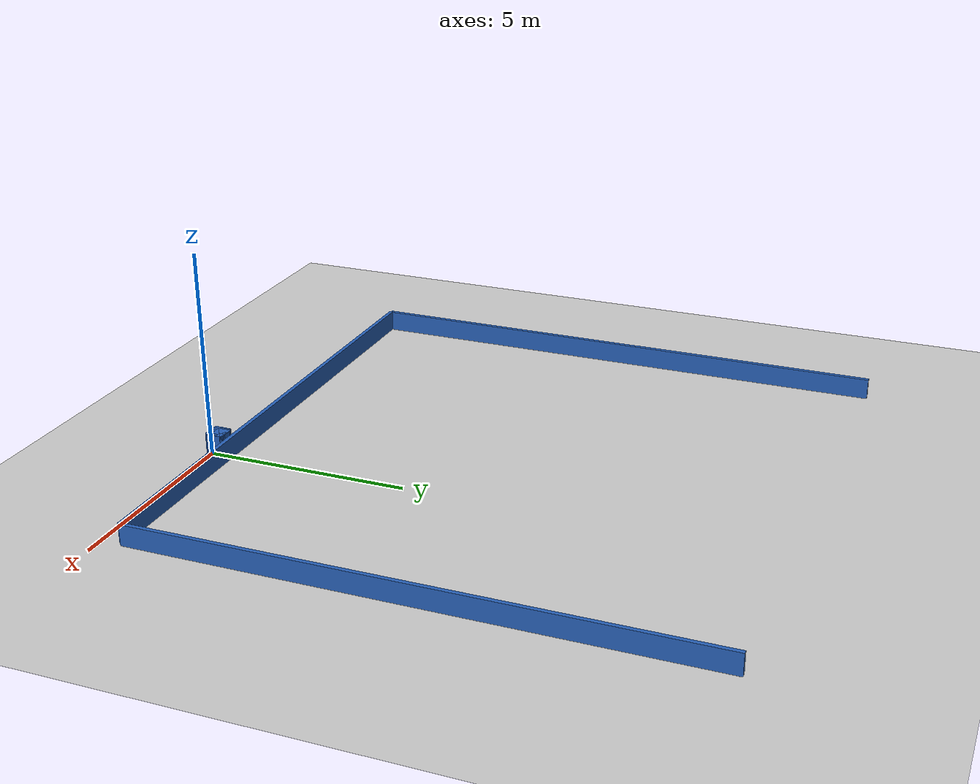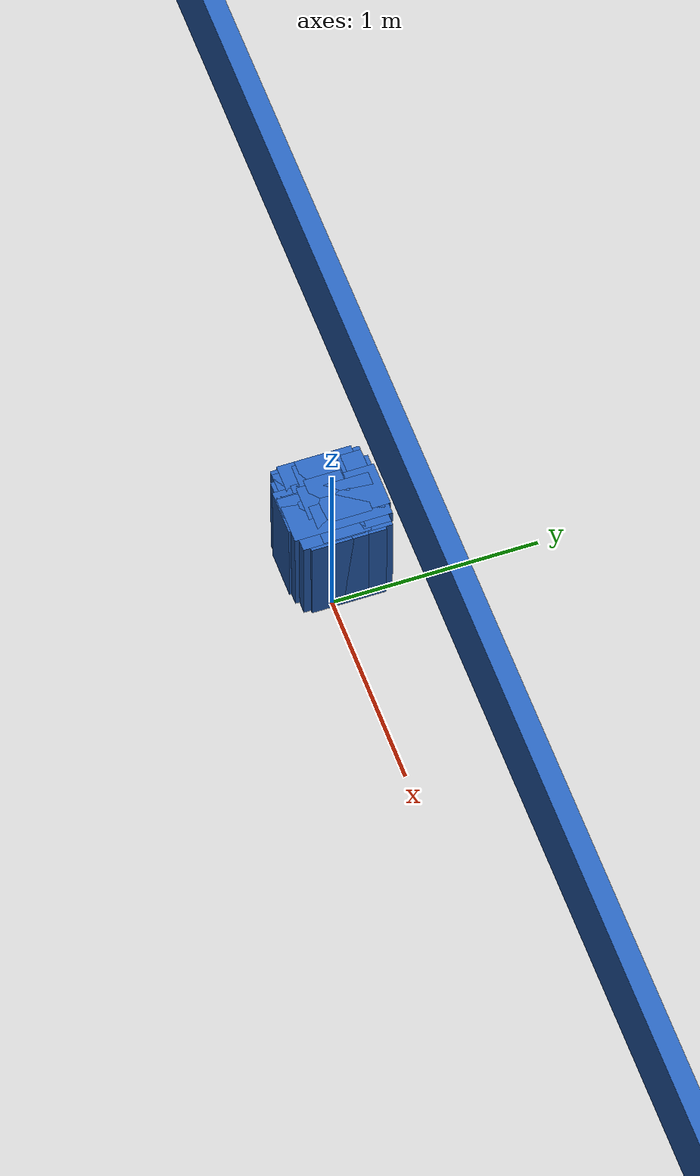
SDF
<?xml version="1.0" ?>
    <sdf version="1.5">
      <world name="default">
        <!-- A global light source -->
        <include>
          <uri>model://sun</uri>
        </include>
        <!-- A ground plane -->
        <include>
          <uri>model://ground_plane</uri>
        </include>

    <model name='libopen_space_final_T2B_73_9'>
      <static>1</static>
      <pose frame=''>-0.225000 0.075000 0.000000 0.000000 0.000000 0.000000</pose>
      <link name='link'>
        <inertial>
          <mass>1</mass>
          <inertia>
            <ixx>0.145833</ixx>
            <ixy>0</ixy>
            <ixz>0</ixz>
            <iyy>0.145833</iyy>
            <iyz>0</iyz>
            <izz>0.125</izz>
          </inertia>
        </inertial>
        <collision name='collision'>
          <geometry>
            <box>
              <size>0.42 0.43 1</size>
            </box>
          </geometry>
          <max_contacts>10</max_contacts>
          <surface>
            <contact>
              <ode/>
            </contact>
            <bounce/>
            <friction>
              <torsional>
                <ode/>
              </torsional>
              <ode/>
            </friction>
          </surface>
        </collision>
        <visual name='visual'>
          <geometry>
            <box>
              <size>0.42 0.43 1</size>
            </box>
          </geometry>
	    <material>
              <ambient>0.152000 0.379000 0.720000 1</ambient>
	      <diffuse>0.152000 0.379000 0.720000 1</diffuse>
          </material>
          <material>
            <script>
              <name>Gazebo/Grey</name>
              <uri>file://media/materials/scripts/gazebo.material</uri>
            </script>
          </material>
        </visual>
        <self_collide>0</self_collide>
        <kinematic>0</kinematic>
        <gravity>1</gravity>
      </link>
      <plugin name='libopen_space_final_T2B_73_9' filename='libopen_space_final_T2B_73_9.so'/>
    </model>

    <model name='libopen_space_final_T2B_112_28'>
      <static>1</static>
      <pose frame=''>-0.225000 0.075000 0.000000 0.000000 0.000000 0.000000</pose>
      <link name='link'>
        <inertial>
          <mass>1</mass>
          <inertia>
            <ixx>0.145833</ixx>
            <ixy>0</ixy>
            <ixz>0</ixz>
            <iyy>0.145833</iyy>
            <iyz>0</iyz>
            <izz>0.125</izz>
          </inertia>
        </inertial>
        <collision name='collision'>
          <geometry>
            <box>
              <size>0.23 0.49 1</size>
            </box>
          </geometry>
          <max_contacts>10</max_contacts>
          <surface>
            <contact>
              <ode/>
            </contact>
            <bounce/>
            <friction>
              <torsional>
                <ode/>
              </torsional>
              <ode/>
            </friction>
          </surface>
        </collision>
        <visual name='visual'>
          <geometry>
            <box>
              <size>0.23 0.49 1</size>
            </box>
          </geometry>
	    <material>
              <ambient>0.152000 0.379000 0.720000 1</ambient>
	      <diffuse>0.152000 0.379000 0.720000 1</diffuse>
          </material>
          <material>
            <script>
              <name>Gazebo/Grey</name>
              <uri>file://media/materials/scripts/gazebo.material</uri>
            </script>
          </material>
        </visual>
        <self_collide>0</self_collide>
        <kinematic>0</kinematic>
        <gravity>1</gravity>
      </link>
      <plugin name='libopen_space_final_T2B_112_28' filename='libopen_space_final_T2B_112_28.so'/>
    </model>

    <model name='libopen_space_final_T2B_92_34'>
      <static>1</static>
      <pose frame=''>-0.225000 0.075000 0.000000 0.000000 0.000000 0.000000</pose>
      <link name='link'>
        <inertial>
          <mass>1</mass>
          <inertia>
            <ixx>0.145833</ixx>
            <ixy>0</ixy>
            <ixz>0</ixz>
            <iyy>0.145833</iyy>
            <iyz>0</iyz>
            <izz>0.125</izz>
          </inertia>
        </inertial>
        <collision name='collision'>
          <geometry>
            <box>
              <size>0.27 0.18 1</size>
            </box>
          </geometry>
          <max_contacts>10</max_contacts>
          <surface>
            <contact>
              <ode/>
            </contact>
            <bounce/>
            <friction>
              <torsional>
                <ode/>
              </torsional>
              <ode/>
            </friction>
          </surface>
        </collision>
        <visual name='visual'>
          <geometry>
            <box>
              <size>0.27 0.18 1</size>
            </box>
          </geometry>
	    <material>
              <ambient>0.152000 0.379000 0.720000 1</ambient>
	      <diffuse>0.152000 0.379000 0.720000 1</diffuse>
          </material>
          <material>
            <script>
              <name>Gazebo/Grey</name>
              <uri>file://media/materials/scripts/gazebo.material</uri>
            </script>
          </material>
        </visual>
        <self_collide>0</self_collide>
        <kinematic>0</kinematic>
        <gravity>1</gravity>
      </link>
      <plugin name='libopen_space_final_T2B_92_34' filename='libopen_space_final_T2B_92_34.so'/>
    </model>

    <model name='libopen_space_final_T2B_134_32'>
      <static>1</static>
      <pose frame=''>-0.225000 0.075000 0.000000 0.000000 0.000000 0.000000</pose>
      <link name='link'>
        <inertial>
          <mass>1</mass>
          <inertia>
            <ixx>0.145833</ixx>
            <ixy>0</ixy>
            <ixz>0</ixz>
            <iyy>0.145833</iyy>
            <iyz>0</iyz>
            <izz>0.125</izz>
          </inertia>
        </inertial>
        <collision name='collision'>
          <geometry>
            <box>
              <size>0.45 0.23 1</size>
            </box>
          </geometry>
          <max_contacts>10</max_contacts>
          <surface>
            <contact>
              <ode/>
            </contact>
            <bounce/>
            <friction>
              <torsional>
                <ode/>
              </torsional>
              <ode/>
            </friction>
          </surface>
        </collision>
        <visual name='visual'>
          <geometry>
            <box>
              <size>0.45 0.23 1</size>
            </box>
          </geometry>
	    <material>
              <ambient>0.152000 0.379000 0.720000 1</ambient>
	      <diffuse>0.152000 0.379000 0.720000 1</diffuse>
          </material>
          <material>
            <script>
              <name>Gazebo/Grey</name>
              <uri>file://media/materials/scripts/gazebo.material</uri>
            </script>
          </material>
        </visual>
        <self_collide>0</self_collide>
        <kinematic>0</kinematic>
        <gravity>1</gravity>
      </link>
      <plugin name='libopen_space_final_T2B_134_32' filename='libopen_space_final_T2B_134_32.so'/>
    </model>

    <model name='libopen_space_final_T2B_79_14'>
      <static>1</static>
      <pose frame=''>-0.225000 0.075000 0.000000 0.000000 0.000000 0.000000</pose>
      <link name='link'>
        <inertial>
          <mass>1</mass>
          <inertia>
            <ixx>0.145833</ixx>
            <ixy>0</ixy>
            <ixz>0</ixz>
            <iyy>0.145833</iyy>
            <iyz>0</iyz>
            <izz>0.125</izz>
          </inertia>
        </inertial>
        <collision name='collision'>
          <geometry>
            <box>
              <size>0.34 0.47 1</size>
            </box>
          </geometry>
          <max_contacts>10</max_contacts>
          <surface>
            <contact>
              <ode/>
            </contact>
            <bounce/>
            <friction>
              <torsional>
                <ode/>
              </torsional>
              <ode/>
            </friction>
          </surface>
        </collision>
        <visual name='visual'>
          <geometry>
            <box>
              <size>0.34 0.47 1</size>
            </box>
          </geometry>
	    <material>
              <ambient>0.152000 0.379000 0.720000 1</ambient>
	      <diffuse>0.152000 0.379000 0.720000 1</diffuse>
          </material>
          <material>
            <script>
              <name>Gazebo/Grey</name>
              <uri>file://media/materials/scripts/gazebo.material</uri>
            </script>
          </material>
        </visual>
        <self_collide>0</self_collide>
        <kinematic>0</kinematic>
        <gravity>1</gravity>
      </link>
      <plugin name='libopen_space_final_T2B_79_14' filename='libopen_space_final_T2B_79_14.so'/>
    </model>

    <model name='libopen_space_final_T2B_134_25'>
      <static>1</static>
      <pose frame=''>-0.225000 0.075000 0.000000 0.000000 0.000000 0.000000</pose>
      <link name='link'>
        <inertial>
          <mass>1</mass>
          <inertia>
            <ixx>0.145833</ixx>
            <ixy>0</ixy>
            <ixz>0</ixz>
            <iyy>0.145833</iyy>
            <iyz>0</iyz>
            <izz>0.125</izz>
          </inertia>
        </inertial>
        <collision name='collision'>
          <geometry>
            <box>
              <size>0.16 0.41 1</size>
            </box>
          </geometry>
          <max_contacts>10</max_contacts>
          <surface>
            <contact>
              <ode/>
            </contact>
            <bounce/>
            <friction>
              <torsional>
                <ode/>
              </torsional>
              <ode/>
            </friction>
          </surface>
        </collision>
        <visual name='visual'>
          <geometry>
            <box>
              <size>0.16 0.41 1</size>
            </box>
          </geometry>
	    <material>
              <ambient>0.152000 0.379000 0.720000 1</ambient>
	      <diffuse>0.152000 0.379000 0.720000 1</diffuse>
          </material>
          <material>
            <script>
              <name>Gazebo/Grey</name>
              <uri>file://media/materials/scripts/gazebo.material</uri>
            </script>
          </material>
        </visual>
        <self_collide>0</self_collide>
        <kinematic>0</kinematic>
        <gravity>1</gravity>
      </link>
      <plugin name='libopen_space_final_T2B_134_25' filename='libopen_space_final_T2B_134_25.so'/>
    </model>

    <model name='libopen_space_final_T2B_125_59'>
      <static>1</static>
      <pose frame=''>-0.225000 0.075000 0.000000 0.000000 0.000000 0.000000</pose>
      <link name='link'>
        <inertial>
          <mass>1</mass>
          <inertia>
            <ixx>0.145833</ixx>
            <ixy>0</ixy>
            <ixz>0</ixz>
            <iyy>0.145833</iyy>
            <iyz>0</iyz>
            <izz>0.125</izz>
          </inertia>
        </inertial>
        <collision name='collision'>
          <geometry>
            <box>
              <size>0.25 0.15 1</size>
            </box>
          </geometry>
          <max_contacts>10</max_contacts>
          <surface>
            <contact>
              <ode/>
            </contact>
            <bounce/>
            <friction>
              <torsional>
                <ode/>
              </torsional>
              <ode/>
            </friction>
          </surface>
        </collision>
        <visual name='visual'>
          <geometry>
            <box>
              <size>0.25 0.15 1</size>
            </box>
          </geometry>
	    <material>
              <ambient>0.152000 0.379000 0.720000 1</ambient>
	      <diffuse>0.152000 0.379000 0.720000 1</diffuse>
          </material>
          <material>
            <script>
              <name>Gazebo/Grey</name>
              <uri>file://media/materials/scripts/gazebo.material</uri>
            </script>
          </material>
        </visual>
        <self_collide>0</self_collide>
        <kinematic>0</kinematic>
        <gravity>1</gravity>
      </link>
      <plugin name='libopen_space_final_T2B_125_59' filename='libopen_space_final_T2B_125_59.so'/>
    </model>

    <model name='libopen_space_final_T2B_118_50'>
      <static>1</static>
      <pose frame=''>-0.225000 0.075000 0.000000 0.000000 0.000000 0.000000</pose>
      <link name='link'>
        <inertial>
          <mass>1</mass>
          <inertia>
            <ixx>0.145833</ixx>
            <ixy>0</ixy>
            <ixz>0</ixz>
            <iyy>0.145833</iyy>
            <iyz>0</iyz>
            <izz>0.125</izz>
          </inertia>
        </inertial>
        <collision name='collision'>
          <geometry>
            <box>
              <size>0.46 0.43 1</size>
            </box>
          </geometry>
          <max_contacts>10</max_contacts>
          <surface>
            <contact>
              <ode/>
            </contact>
            <bounce/>
            <friction>
              <torsional>
                <ode/>
              </torsional>
              <ode/>
            </friction>
          </surface>
        </collision>
        <visual name='visual'>
          <geometry>
            <box>
              <size>0.46 0.43 1</size>
            </box>
          </geometry>
	    <material>
              <ambient>0.152000 0.379000 0.720000 1</ambient>
	      <diffuse>0.152000 0.379000 0.720000 1</diffuse>
          </material>
          <material>
            <script>
              <name>Gazebo/Grey</name>
              <uri>file://media/materials/scripts/gazebo.material</uri>
            </script>
          </material>
        </visual>
        <self_collide>0</self_collide>
        <kinematic>0</kinematic>
        <gravity>1</gravity>
      </link>
      <plugin name='libopen_space_final_T2B_118_50' filename='libopen_space_final_T2B_118_50.so'/>
    </model>

    <model name='libopen_space_final_T2B_100_36'>
      <static>1</static>
      <pose frame=''>-0.225000 0.075000 0.000000 0.000000 0.000000 0.000000</pose>
      <link name='link'>
        <inertial>
          <mass>1</mass>
          <inertia>
            <ixx>0.145833</ixx>
            <ixy>0</ixy>
            <ixz>0</ixz>
            <iyy>0.145833</iyy>
            <iyz>0</iyz>
            <izz>0.125</izz>
          </inertia>
        </inertial>
        <collision name='collision'>
          <geometry>
            <box>
              <size>0.49 0.19 1</size>
            </box>
          </geometry>
          <max_contacts>10</max_contacts>
          <surface>
            <contact>
              <ode/>
            </contact>
            <bounce/>
            <friction>
              <torsional>
                <ode/>
              </torsional>
              <ode/>
            </friction>
          </surface>
        </collision>
        <visual name='visual'>
          <geometry>
            <box>
              <size>0.49 0.19 1</size>
            </box>
          </geometry>
	    <material>
              <ambient>0.152000 0.379000 0.720000 1</ambient>
	      <diffuse>0.152000 0.379000 0.720000 1</diffuse>
          </material>
          <material>
            <script>
              <name>Gazebo/Grey</name>
              <uri>file://media/materials/scripts/gazebo.material</uri>
            </script>
          </material>
        </visual>
        <self_collide>0</self_collide>
        <kinematic>0</kinematic>
        <gravity>1</gravity>
      </link>
      <plugin name='libopen_space_final_T2B_100_36' filename='libopen_space_final_T2B_100_36.so'/>
    </model>

    <model name='libopen_space_final_T2B_122_30'>
      <static>1</static>
      <pose frame=''>-0.225000 0.075000 0.000000 0.000000 0.000000 0.000000</pose>
      <link name='link'>
        <inertial>
          <mass>1</mass>
          <inertia>
            <ixx>0.145833</ixx>
            <ixy>0</ixy>
            <ixz>0</ixz>
            <iyy>0.145833</iyy>
            <iyz>0</iyz>
            <izz>0.125</izz>
          </inertia>
        </inertial>
        <collision name='collision'>
          <geometry>
            <box>
              <size>0.15 0.48 1</size>
            </box>
          </geometry>
          <max_contacts>10</max_contacts>
          <surface>
            <contact>
              <ode/>
            </contact>
            <bounce/>
            <friction>
              <torsional>
                <ode/>
              </torsional>
              <ode/>
            </friction>
          </surface>
        </collision>
        <visual name='visual'>
          <geometry>
            <box>
              <size>0.15 0.48 1</size>
            </box>
          </geometry>
	    <material>
              <ambient>0.152000 0.379000 0.720000 1</ambient>
	      <diffuse>0.152000 0.379000 0.720000 1</diffuse>
          </material>
          <material>
            <script>
              <name>Gazebo/Grey</name>
              <uri>file://media/materials/scripts/gazebo.material</uri>
            </script>
          </material>
        </visual>
        <self_collide>0</self_collide>
        <kinematic>0</kinematic>
        <gravity>1</gravity>
      </link>
      <plugin name='libopen_space_final_T2B_122_30' filename='libopen_space_final_T2B_122_30.so'/>
    </model>

    <model name='libopen_space_final_T2B_112_54'>
      <static>1</static>
      <pose frame=''>-0.225000 0.075000 0.000000 0.000000 0.000000 0.000000</pose>
      <link name='link'>
        <inertial>
          <mass>1</mass>
          <inertia>
            <ixx>0.145833</ixx>
            <ixy>0</ixy>
            <ixz>0</ixz>
            <iyy>0.145833</iyy>
            <iyz>0</iyz>
            <izz>0.125</izz>
          </inertia>
        </inertial>
        <collision name='collision'>
          <geometry>
            <box>
              <size>0.49 0.36 1</size>
            </box>
          </geometry>
          <max_contacts>10</max_contacts>
          <surface>
            <contact>
              <ode/>
            </contact>
            <bounce/>
            <friction>
              <torsional>
                <ode/>
              </torsional>
              <ode/>
            </friction>
          </surface>
        </collision>
        <visual name='visual'>
          <geometry>
            <box>
              <size>0.49 0.36 1</size>
            </box>
          </geometry>
	    <material>
              <ambient>0.152000 0.379000 0.720000 1</ambient>
	      <diffuse>0.152000 0.379000 0.720000 1</diffuse>
          </material>
          <material>
            <script>
              <name>Gazebo/Grey</name>
              <uri>file://media/materials/scripts/gazebo.material</uri>
            </script>
          </material>
        </visual>
        <self_collide>0</self_collide>
        <kinematic>0</kinematic>
        <gravity>1</gravity>
      </link>
      <plugin name='libopen_space_final_T2B_112_54' filename='libopen_space_final_T2B_112_54.so'/>
    </model>

    <model name='libopen_space_final_T2B_115_24'>
      <static>1</static>
      <pose frame=''>-0.225000 0.075000 0.000000 0.000000 0.000000 0.000000</pose>
      <link name='link'>
        <inertial>
          <mass>1</mass>
          <inertia>
            <ixx>0.145833</ixx>
            <ixy>0</ixy>
            <ixz>0</ixz>
            <iyy>0.145833</iyy>
            <iyz>0</iyz>
            <izz>0.125</izz>
          </inertia>
        </inertial>
        <collision name='collision'>
          <geometry>
            <box>
              <size>0.25 0.31 1</size>
            </box>
          </geometry>
          <max_contacts>10</max_contacts>
          <surface>
            <contact>
              <ode/>
            </contact>
            <bounce/>
            <friction>
              <torsional>
                <ode/>
              </torsional>
              <ode/>
            </friction>
          </surface>
        </collision>
        <visual name='visual'>
          <geometry>
            <box>
              <size>0.25 0.31 1</size>
            </box>
          </geometry>
	    <material>
              <ambient>0.152000 0.379000 0.720000 1</ambient>
	      <diffuse>0.152000 0.379000 0.720000 1</diffuse>
          </material>
          <material>
            <script>
              <name>Gazebo/Grey</name>
              <uri>file://media/materials/scripts/gazebo.material</uri>
            </script>
          </material>
        </visual>
        <self_collide>0</self_collide>
        <kinematic>0</kinematic>
        <gravity>1</gravity>
      </link>
      <plugin name='libopen_space_final_T2B_115_24' filename='libopen_space_final_T2B_115_24.so'/>
    </model>

    <model name='libopen_space_final_T2B_116_74'>
      <static>1</static>
      <pose frame=''>-0.225000 0.075000 0.000000 0.000000 0.000000 0.000000</pose>
      <link name='link'>
        <inertial>
          <mass>1</mass>
          <inertia>
            <ixx>0.145833</ixx>
            <ixy>0</ixy>
            <ixz>0</ixz>
            <iyy>0.145833</iyy>
            <iyz>0</iyz>
            <izz>0.125</izz>
          </inertia>
        </inertial>
        <collision name='collision'>
          <geometry>
            <box>
              <size>0.18 0.12 1</size>
            </box>
          </geometry>
          <max_contacts>10</max_contacts>
          <surface>
            <contact>
              <ode/>
            </contact>
            <bounce/>
            <friction>
              <torsional>
                <ode/>
              </torsional>
              <ode/>
            </friction>
          </surface>
        </collision>
        <visual name='visual'>
          <geometry>
            <box>
              <size>0.18 0.12 1</size>
            </box>
          </geometry>
	    <material>
              <ambient>0.152000 0.379000 0.720000 1</ambient>
	      <diffuse>0.152000 0.379000 0.720000 1</diffuse>
          </material>
          <material>
            <script>
              <name>Gazebo/Grey</name>
              <uri>file://media/materials/scripts/gazebo.material</uri>
            </script>
          </material>
        </visual>
        <self_collide>0</self_collide>
        <kinematic>0</kinematic>
        <gravity>1</gravity>
      </link>
      <plugin name='libopen_space_final_T2B_116_74' filename='libopen_space_final_T2B_116_74.so'/>
    </model>

    <model name='libopen_space_final_T2B_118_43'>
      <static>1</static>
      <pose frame=''>-0.225000 0.075000 0.000000 0.000000 0.000000 0.000000</pose>
      <link name='link'>
        <inertial>
          <mass>1</mass>
          <inertia>
            <ixx>0.145833</ixx>
            <ixy>0</ixy>
            <ixz>0</ixz>
            <iyy>0.145833</iyy>
            <iyz>0</iyz>
            <izz>0.125</izz>
          </inertia>
        </inertial>
        <collision name='collision'>
          <geometry>
            <box>
              <size>0.21 0.27 1</size>
            </box>
          </geometry>
          <max_contacts>10</max_contacts>
          <surface>
            <contact>
              <ode/>
            </contact>
            <bounce/>
            <friction>
              <torsional>
                <ode/>
              </torsional>
              <ode/>
            </friction>
          </surface>
        </collision>
        <visual name='visual'>
          <geometry>
            <box>
              <size>0.21 0.27 1</size>
            </box>
          </geometry>
	    <material>
              <ambient>0.152000 0.379000 0.720000 1</ambient>
	      <diffuse>0.152000 0.379000 0.720000 1</diffuse>
          </material>
          <material>
            <script>
              <name>Gazebo/Grey</name>
              <uri>file://media/materials/scripts/gazebo.material</uri>
            </script>
          </material>
        </visual>
        <self_collide>0</self_collide>
        <kinematic>0</kinematic>
        <gravity>1</gravity>
      </link>
      <plugin name='libopen_space_final_T2B_118_43' filename='libopen_space_final_T2B_118_43.so'/>
    </model>

        <model name='bottom_wall'>
          <static>1</static>
          <pose frame=''>-2.25 0.5 0.000000 0.000000 0.000000 1.57079632</pose>
          <link name='link'>
            <inertial>
            <mass>1</mass>
            <inertia>
              <ixx>0.145833</ixx>
              <ixy>0</ixy>
              <ixz>0</ixz>
              <iyy>0.145833</iyy>
              <iyz>0</iyz>
              <izz>0.125</izz>
            </inertia>
            </inertial>
            <collision name='collision'>
            <geometry>
              <box>
              <size>0.1 13.5 1</size>
              </box>
            </geometry>
            <max_contacts>10</max_contacts>
            <surface>
              <contact>
              <ode/>
              </contact>
              <bounce/>
              <friction>
              <torsional>
                <ode/>
              </torsional>
              <ode/>
              </friction>
            </surface>
            </collision>
            <visual name='visual'>
            <geometry>
              <box>
              <size>0.1 13.5 1</size>
              </box>
            </geometry>
            <material>
              <ambient>0.152000 0.379000 0.720000 1</ambient>
            <diffuse>0.152000 0.379000 0.720000 1</diffuse>
            </material>
            <material>
              <script>
              <name>Gazebo/Grey</name>
              <uri>file://media/materials/scripts/gazebo.material</uri>
              </script>
            </material>
            </visual>
            <self_collide>0</self_collide>
            <kinematic>0</kinematic>
            <gravity>1</gravity>
          </link>
        </model>

        <model name='left_wall'>
          <static>1</static>
          <pose frame=''>-9 7.25 0.000000 0.000000 0.000000 0.000000</pose>
          <link name='link'>
            <inertial>
            <mass>1</mass>
            <inertia>
              <ixx>0.145833</ixx>
              <ixy>0</ixy>
              <ixz>0</ixz>
              <iyy>0.145833</iyy>
              <iyz>0</iyz>
              <izz>0.125</izz>
            </inertia>
            </inertial>
            <collision name='collision'>
            <geometry>
              <box>
              <size>0.1 13.5 1</size>
              </box>
            </geometry>
            <max_contacts>10</max_contacts>
            <surface>
              <contact>
              <ode/>
              </contact>
              <bounce/>
              <friction>
              <torsional>
                <ode/>
              </torsional>
              <ode/>
              </friction>
            </surface>
            </collision>
            <visual name='visual'>
            <geometry>
              <box>
              <size>0.1 13.5 1</size>
              </box>
            </geometry>
            <material>
              <ambient>0.152000 0.379000 0.720000 1</ambient>
            <diffuse>0.152000 0.379000 0.720000 1</diffuse>
            </material>
            <material>
              <script>
              <name>Gazebo/Grey</name>
              <uri>file://media/materials/scripts/gazebo.material</uri>
              </script>
            </material>
            </visual>
            <self_collide>0</self_collide>
            <kinematic>0</kinematic>
            <gravity>1</gravity>
          </link>
        </model>

        <model name='right_wall'>
          <static>1</static>
          <pose frame=''>4.5 7.25 0.000000 0.000000 0.000000 0.000000</pose>
          <link name='link'>
            <inertial>
            <mass>1</mass>
            <inertia>
              <ixx>0.145833</ixx>
              <ixy>0</ixy>
              <ixz>0</ixz>
              <iyy>0.145833</iyy>
              <iyz>0</iyz>
              <izz>0.125</izz>
            </inertia>
            </inertial>
            <collision name='collision'>
            <geometry>
              <box>
              <size>0.1 13.5 1</size>
              </box>
            </geometry>
            <max_contacts>10</max_contacts>
            <surface>
              <contact>
              <ode/>
              </contact>
              <bounce/>
              <friction>
              <torsional>
                <ode/>
              </torsional>
              <ode/>
              </friction>
            </surface>
            </collision>
            <visual name='visual'>
            <geometry>
              <box>
              <size>0.1 13.5 1</size>
              </box>
            </geometry>
            <material>
              <ambient>0.152000 0.379000 0.720000 1</ambient>
            <diffuse>0.152000 0.379000 0.720000 1</diffuse>
            </material>
            <material>
              <script>
              <name>Gazebo/Grey</name>
              <uri>file://media/materials/scripts/gazebo.material</uri>
              </script>
            </material>
            </visual>
            <self_collide>0</self_collide>
            <kinematic>0</kinematic>
            <gravity>1</gravity>
          </link>
        </model>

      </world>
    </sdf>"
